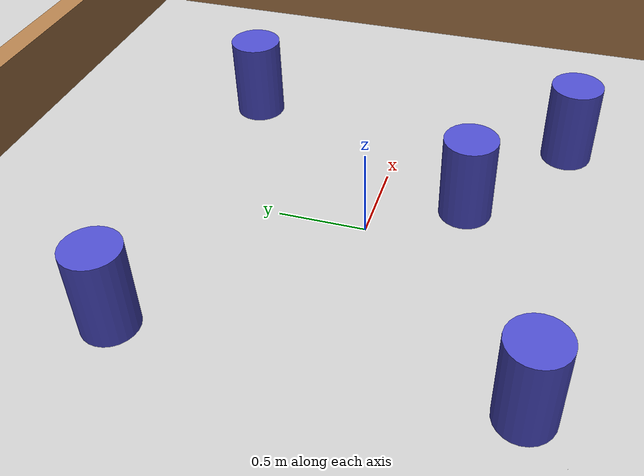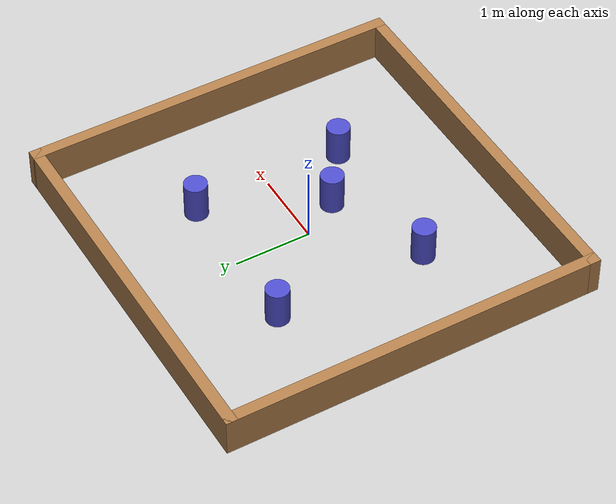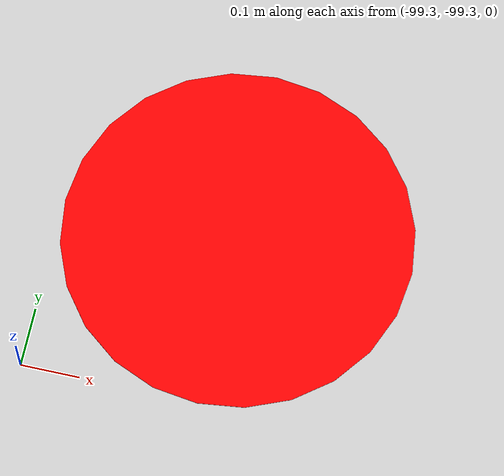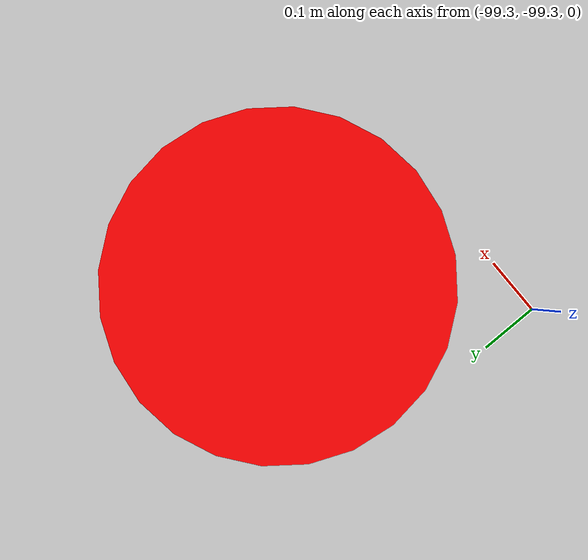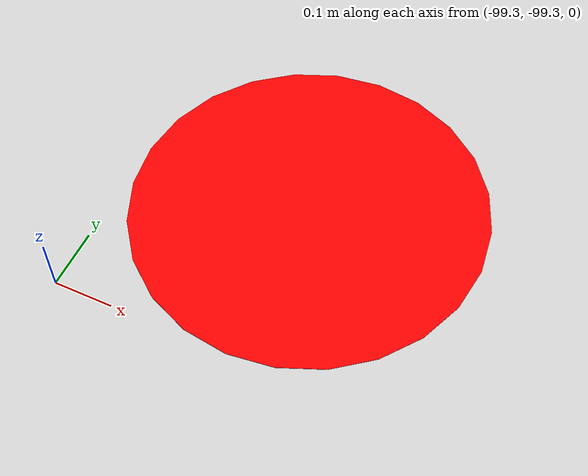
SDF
<?xml version="1.0" ?>
<!--
  DRL Stage 3 — 4 static cylinders + 1 extra (original had moving obstacles,
  not reproducible in Gazebo Harmonic without custom plugins).
-->
<sdf version="1.8">
  <world name="drl_stage3">

    <plugin filename="gz-sim-physics-system"           name="gz::sim::systems::Physics"/>
    <plugin filename="gz-sim-sensors-system"           name="gz::sim::systems::Sensors">
      <render_engine>ogre2</render_engine>
    </plugin>
    <plugin filename="gz-sim-user-commands-system"     name="gz::sim::systems::UserCommands"/>
    <plugin filename="gz-sim-scene-broadcaster-system" name="gz::sim::systems::SceneBroadcaster"/>

    <physics name="1ms" type="ignored">
      <max_step_size>0.001</max_step_size>
      <real_time_factor>1.0</real_time_factor>
    </physics>
    <scene>
      <ambient>0.4 0.4 0.4 1</ambient>
      <background>0.7 0.7 0.7 1</background>
    </scene>

    <light type="directional" name="sun">
      <cast_shadows>true</cast_shadows>
      <pose>0 0 10 0 0 0</pose>
      <diffuse>0.8 0.8 0.8 1</diffuse>
      <specular>0.2 0.2 0.2 1</specular>
      <direction>-0.5 0.1 -0.9</direction>
    </light>

    <model name="ground_plane">
      <static>true</static>
      <link name="link">
        <collision name="collision">
          <geometry><plane><normal>0 0 1</normal><size>20 20</size></plane></geometry>
        </collision>
        <visual name="visual">
          <geometry><plane><normal>0 0 1</normal><size>20 20</size></plane></geometry>
          <material><ambient>0.8 0.8 0.8 1</ambient><diffuse>0.8 0.8 0.8 1</diffuse></material>
        </visual>
      </link>
    </model>

    <model name="outer_walls">
      <static>true</static>
      <link name="Wall_1">
        <pose>-2.425 0 0.25 0 0 1.5708</pose>
        <collision name="collision"><geometry><box><size>5 0.15 0.5</size></box></geometry></collision>
        <visual name="visual"><geometry><box><size>5 0.15 0.5</size></box></geometry><material><ambient>0.7 0.5 0.3 1</ambient><diffuse>0.7 0.5 0.3 1</diffuse></material></visual>
      </link>
      <link name="Wall_2">
        <pose>0 2.425 0.25 0 0 0</pose>
        <collision name="collision"><geometry><box><size>5 0.15 0.5</size></box></geometry></collision>
        <visual name="visual"><geometry><box><size>5 0.15 0.5</size></box></geometry><material><ambient>0.7 0.5 0.3 1</ambient><diffuse>0.7 0.5 0.3 1</diffuse></material></visual>
      </link>
      <link name="Wall_3">
        <pose>2.425 0 0.25 0 0 -1.5708</pose>
        <collision name="collision"><geometry><box><size>5 0.15 0.5</size></box></geometry></collision>
        <visual name="visual"><geometry><box><size>5 0.15 0.5</size></box></geometry><material><ambient>0.7 0.5 0.3 1</ambient><diffuse>0.7 0.5 0.3 1</diffuse></material></visual>
      </link>
      <link name="Wall_4">
        <pose>0 -2.425 0.25 0 0 3.14159</pose>
        <collision name="collision"><geometry><box><size>5 0.15 0.5</size></box></geometry></collision>
        <visual name="visual"><geometry><box><size>5 0.15 0.5</size></box></geometry><material><ambient>0.7 0.5 0.3 1</ambient><diffuse>0.7 0.5 0.3 1</diffuse></material></visual>
      </link>
    </model>

    <!-- 5 cylinder obstacles — corner 4 + 1 centre-offset -->
    <model name="obstacles">
      <static>true</static>
      <link name="obs_sw">
        <pose>-1.0 -1.0 0.25 0 0 0</pose>
        <collision name="collision"><geometry><cylinder><radius>0.15</radius><length>0.5</length></cylinder></geometry></collision>
        <visual name="visual"><geometry><cylinder><radius>0.15</radius><length>0.5</length></cylinder></geometry><material><ambient>0.3 0.3 0.8 1</ambient><diffuse>0.3 0.3 0.8 1</diffuse></material></visual>
      </link>
      <link name="obs_nw">
        <pose>-1.0 1.0 0.25 0 0 0</pose>
        <collision name="collision"><geometry><cylinder><radius>0.15</radius><length>0.5</length></cylinder></geometry></collision>
        <visual name="visual"><geometry><cylinder><radius>0.15</radius><length>0.5</length></cylinder></geometry><material><ambient>0.3 0.3 0.8 1</ambient><diffuse>0.3 0.3 0.8 1</diffuse></material></visual>
      </link>
      <link name="obs_se">
        <pose>1.0 -1.0 0.25 0 0 0</pose>
        <collision name="collision"><geometry><cylinder><radius>0.15</radius><length>0.5</length></cylinder></geometry></collision>
        <visual name="visual"><geometry><cylinder><radius>0.15</radius><length>0.5</length></cylinder></geometry><material><ambient>0.3 0.3 0.8 1</ambient><diffuse>0.3 0.3 0.8 1</diffuse></material></visual>
      </link>
      <link name="obs_ne">
        <pose>1.0 1.0 0.25 0 0 0</pose>
        <collision name="collision"><geometry><cylinder><radius>0.15</radius><length>0.5</length></cylinder></geometry></collision>
        <visual name="visual"><geometry><cylinder><radius>0.15</radius><length>0.5</length></cylinder></geometry><material><ambient>0.3 0.3 0.8 1</ambient><diffuse>0.3 0.3 0.8 1</diffuse></material></visual>
      </link>
      <link name="obs_centre">
        <pose>0.3 -0.5 0.25 0 0 0</pose>
        <collision name="collision"><geometry><cylinder><radius>0.15</radius><length>0.5</length></cylinder></geometry></collision>
        <visual name="visual"><geometry><cylinder><radius>0.15</radius><length>0.5</length></cylinder></geometry><material><ambient>0.3 0.3 0.8 1</ambient><diffuse>0.3 0.3 0.8 1</diffuse></material></visual>
      </link>
    </model>

    <model name="goal">
      <static>true</static>
      <pose>-99 -99 0 0 0 0</pose>
      <link name="goal_link">
        <visual name="visual">
          <pose>0 0 0.0005 0 0 0</pose>
          <geometry><cylinder><radius>0.3</radius><length>0.001</length></cylinder></geometry>
          <material><ambient>1 0 0 1</ambient><diffuse>1 0 0 1</diffuse></material>
        </visual>
      </link>
    </model>

  </world>
</sdf>
